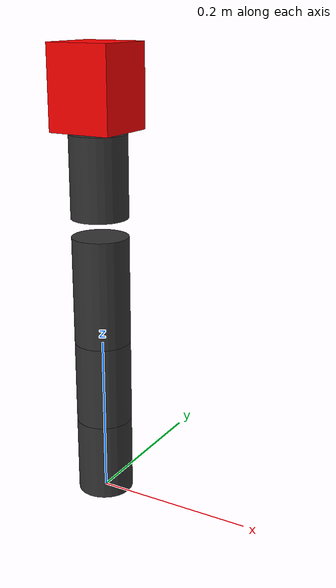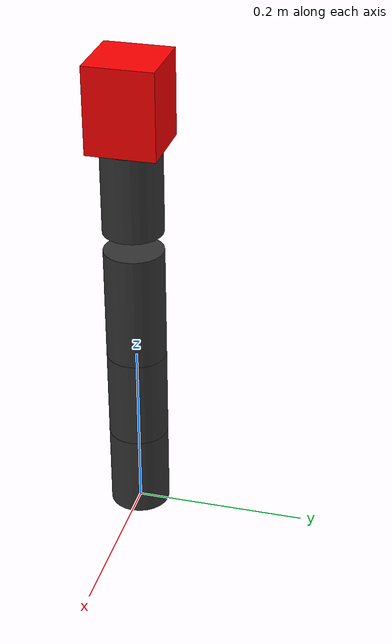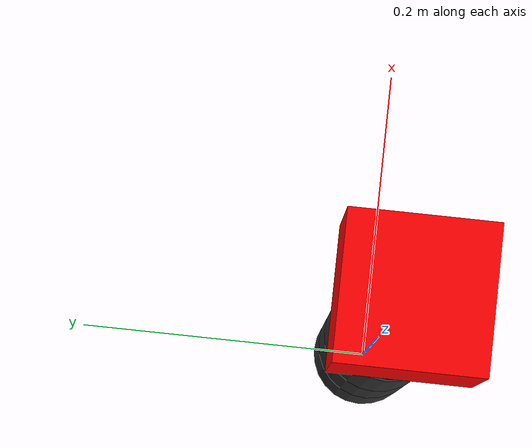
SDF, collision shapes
<?xml version="1.0"?>

<sdf version="1.7">
    <model name="MY_ROBOT">
      <pose>0 0 0 0 0 0</pose>

      <!-- BASE -->
      <link name="BASE">
        <pose>0 0 0 0 0 0</pose>
      </link>

      <!-- SHOULDER -->
      <link name="L1">
        <pose >0 0 0.098 0 0 1.5708</pose>
        <inertial>
          <pose >0 0 0 0 0 0</pose>
          <mass>0.1</mass>
          <inertia>
            <ixx>0.001</ixx>
            <ixy>0</ixy>
            <ixz>0</ixz>
            <iyy>0.001</iyy>
            <iyz>0</iyz>
            <izz>0.001</izz>
          </inertia>
        </inertial>
        <collision name="L1_collision">
          <pose>0 0 -0.049 0 0 0</pose>
          <geometry>
            <cylinder>
              <radius>0.035</radius>
              <length>0.098</length>
            </cylinder>
          </geometry>
        </collision>

        <visual name="L1_visual_a">
          <pose>0 0 -0.088 0 0 0</pose>
          <geometry>
            <cylinder>
              <radius>0.035</radius>
              <length>0.02</length>
            </cylinder>
          </geometry>
          <material>
            <ambient>0.2 0.2 0.2 1</ambient> <!-- dark gray -->
            <diffuse>0.2 0.2 0.2 1</diffuse>
          </material>
        </visual>

        <visual name="L1_visual_b">
          <pose>0 0 -0.049 0 0 0</pose>
          <geometry>
            <cylinder>
              <radius>0.015</radius>
              <length>0.098</length>
            </cylinder>
          </geometry>
          <material>
            <ambient>0.8 0.8 0.8 1</ambient> <!-- light gray -->
            <diffuse>0.8 0.8 0.8 1</diffuse>
          </material>
        </visual>
      </link>

      <!-- JOINT J0-->
      <joint name="J0" type="revolute">
        <parent>BASE</parent>
        <child>L1</child>
        <pose>0 0 0 0 0 0</pose>
        <axis>
          <xyz>0 0 1</xyz>
          <limit>
            <lower>-1.5708</lower>
            <upper>1.5708</upper>
            <effort>10</effort>
            <velocity>0.35</velocity>
          </limit>
          <dynamics>
            <damping>0</damping>
            <friction>0</friction>
          </dynamics>
        </axis>
      </joint>

      <!-- ARM -->
      <link name="L2">
        <pose>0 0 0.2030 0 -1.5708 1.5708</pose>
        <inertial>
          <pose>0.0 0 0 0 0 0</pose>
          <mass>0.1</mass>
          <inertia>
            <ixx>0.001</ixx>
            <ixy>0</ixy>
            <ixz>0</ixz>
            <iyy>0.001</iyy>
            <iyz>0</iyz>
            <izz>0.001</izz>
          </inertia>
        </inertial>
        <collision name="L2_collision">
          <pose>-0.0525 0 0 0 1.5708 0</pose>
          <geometry>
            <cylinder>
              <radius>0.035</radius>
              <length>0.105</length>
            </cylinder>
          </geometry>
        </collision>
        <visual name="L2_visual_a">
          <pose>-0.105 0 0 0 0 0</pose>
          <geometry>
            <cylinder>
              <radius>0.02</radius>
              <length>0.05</length>
            </cylinder>
          </geometry>
          <material>
            <ambient>0.2 0.2 0.2 1</ambient> <!-- dark gray -->
            <diffuse>0.2 0.2 0.2 1</diffuse>
          </material>
        </visual>

        <visual name="L2_visual_b">
          <pose>-0.0525 0 0 0 1.5708 0</pose>
          <geometry>
            <cylinder>
              <radius>0.015</radius>
              <length>0.105</length>
            </cylinder>
          </geometry>
          <material>
            <ambient>0.8 0.8 0.8 1</ambient> <!-- light gray -->
            <diffuse>0.8 0.8 0.8 1</diffuse>
          </material>
        </visual>
      </link>

      <!-- JOINT J1-->
      <joint name="J1" type="revolute">
        <parent>L1</parent>
        <child>L2</child>
        <pose>-0.105 0 0 0 0 0</pose>
        <axis>
          <xyz>0 0 1</xyz>
          <limit>
            <lower>-1.5708</lower>
            <upper>1.5708</upper>
            <effort>14</effort>
            <velocity>0.35</velocity>
          </limit>
          <dynamics>
            <damping>0</damping>
            <friction>0</friction>
          </dynamics>
        </axis>
      </joint>

      <!-- L3 LINK -->
      <link name="L3">
        <pose>0 0 0.338 0 -1.5708 1.5708</pose>
        <inertial>
          <pose>0 0 0 0 0 0</pose>
          <mass>0.1</mass>
          <inertia>
            <ixx>0.001</ixx>
            <ixy>0</ixy>
            <ixz>0</ixz>
            <iyy>0.001</iyy>
            <iyz>0</iyz>
            <izz>0.001</izz>
          </inertia>
        </inertial>
        <collision name="L3_collision">
          <pose>-0.0675 0 0 0 1.5708 0</pose>
          <geometry>
            <cylinder>
              <radius>0.035</radius>
              <length>0.135</length>
            </cylinder>
          </geometry>
        </collision>
        <visual name="L3_visual_a">
          <pose>-0.135 0 0 0 0 0</pose>
          <geometry>
            <cylinder>
              <radius>0.02</radius>
              <length>0.05</length>
            </cylinder>
          </geometry>
          <material>
            <ambient>0.2 0.2 0.2 1</ambient> <!-- dark gray -->
            <diffuse>0.2 0.2 0.2 1</diffuse>
          </material>
        </visual>

        <visual name="L3_visual_b">
          <pose>-0.0675 0 0 0 1.5708 0</pose>
          <geometry>
            <cylinder>
              <radius>0.015</radius>
              <length>0.135</length>
            </cylinder>
          </geometry>
          <material>
            <ambient>0.8 0.8 0.8 1</ambient> <!-- light gray -->
            <diffuse>0.8 0.8 0.8 1</diffuse>
          </material>
        </visual>
      </link>

      <!-- JOINT J2-->
      <joint name="J2" type="revolute">
        <parent>L2</parent>
        <child>L3</child>
        <pose>-0.135 0 0 0 0 0</pose>
        <axis>
          <xyz>0 0 1</xyz>
          <limit>
            <lower>-1.5708</lower>
            <upper>1.5708</upper>
            <effort>10</effort>
            <velocity>0.35</velocity>
          </limit>
          <dynamics>
            <damping>0</damping>
            <friction>0</friction>
          </dynamics>
        </axis>
      </joint>

            <!-- LOWER_WRIST -->
      <link name="L4">
        <pose>0 0 0.411 0 0 3.1416</pose>
        <inertial>
          <pose>0 0 0 0 0 0</pose>
          <mass>0.1</mass>
          <inertia>
            <ixx>0.001</ixx>
            <ixy>0</ixy>
            <ixz>0</ixz>
            <iyy>0.001</iyy>
            <iyz>0</iyz>
            <izz>0.001</izz>
          </inertia>
        </inertial>
        <collision name="L4_collision">
          <pose>0 0 0 0 0 0</pose>
          <geometry>
            <cylinder>
              <radius>0.035</radius>
              <length>0.1</length>
            </cylinder>
          </geometry>
        </collision>
        <visual name="L4_visual_a">
          <pose>0 0 -0.073 0 -1.5708 1.5708</pose>
          <geometry>
            <cylinder>
              <radius>0.02</radius>
              <length>0.05</length>
            </cylinder>
          </geometry>
          <material>
            <ambient>0.2 0.2 0.2 1</ambient> <!-- dark gray -->
            <diffuse>0.2 0.2 0.2 1</diffuse>
          </material>
        </visual>

        <visual name="L4_visual_b">
          <pose>0 0 -0.0365 0 0 0</pose>
          <geometry>
            <cylinder>
              <radius>0.015</radius>
              <length>0.073</length>
            </cylinder>
          </geometry>
          <material>
            <ambient>0.8 0.8 0.8 1</ambient> <!-- light gray -->
            <diffuse>0.8 0.8 0.8 1</diffuse>
          </material>
        </visual>
      </link>

      <joint name="J3" type="revolute">
        <parent>L3</parent>
        <child>L4</child>
        <pose>0 0 -0.073 0 0 0</pose>
        <axis>
          <xyz>0 1 0</xyz>
          <limit>
            <lower>-1.5708</lower>
            <upper>1.5708</upper>
            <effort>7</effort>
            <velocity>0.35</velocity>
          </limit>
          <dynamics>
            <damping>0</damping>
            <friction>0</friction>
          </dynamics>
        </axis>
      </joint>

      <!-- END_EFFECTOR Tool Center Point-->
      <link name="tool_center_point">
        <pose>0 0 0.514 0 0 3.1416</pose>

        <inertial>
          <pose>0 0 0 0 0 0</pose>
          <mass>0.1</mass>
          <inertia>
            <ixx>0.001</ixx>
            <ixy>0</ixy>
            <ixz>0</ixz>
            <iyy>0.001</iyy>
            <iyz>0</iyz>
            <izz>0.001</izz>
          </inertia>
        </inertial>

        <collision name="End_Effector_collision">
          <pose>0 0 0 0 0 0</pose>
          <geometry>
            <box>
              <size>0.08 0.08 0.1</size>
            </box>
          </geometry>
        </collision>

        <visual name="x_axis">
          <pose>0.025 0 0 0 1.5708 0</pose>
          <geometry>
            <cylinder>
              <radius>0.002</radius>
              <length>0.05</length>
            </cylinder>
          </geometry>
          <material>
            <ambient>1 0 0 1</ambient>
            <diffuse>1 0 0 1</diffuse>
          </material>
        </visual>
        <visual name="y_axis">
          <pose>0 0.025 0 1.5708 0 0</pose>
          <geometry>
            <cylinder>
              <radius>0.002</radius>
              <length>0.05</length>
            </cylinder>
          </geometry>
          <material>
            <ambient>0 1 0 1</ambient>
            <diffuse>0 1 0 1</diffuse>
          </material>
        </visual>
        <visual name="z_axis">
          <pose>0 0 0.025 0 0 0</pose>
          <geometry>
            <cylinder>
              <radius>0.002</radius>
              <length>0.05</length>
            </cylinder>
          </geometry>
          <material>
            <ambient>0 0 1 1</ambient>
            <diffuse>0 0 1 1</diffuse>
          </material>
        </visual>

        <visual name="L5_visual_a">
          <pose>0 0 -0.103 0 0 0</pose>
          <geometry>
            <cylinder>
              <radius>0.02</radius>
              <length>0.025</length>
            </cylinder>
          </geometry>
          <material>
            <ambient>0.2 0.2 0.2 1</ambient> <!-- dark gray -->
            <diffuse>0.2 0.2 0.2 1</diffuse>
          </material>
        </visual>

        <visual name="L5_visual_b">
          <pose>0 0 -0.068 0 0 0</pose>
          <geometry>
            <cylinder>
              <radius>0.015</radius>
              <length>0.05</length>
            </cylinder>
          </geometry>
          <material>
            <ambient>0.8 0.8 0.8 1</ambient> <!-- light gray -->
            <diffuse>0.8 0.8 0.8 1</diffuse>
          </material>
        </visual>

        <visual name="gripper">
          <pose>0 0 -0.025 1.5708 0 0</pose>
          <geometry>
            <mesh>
              <uri>gripper.obj</uri>
            </mesh>
          </geometry>
        </visual>

      </link>

    <joint name="J4" type="revolute">
        <parent>L4</parent>
        <child>tool_center_point</child>
        <pose>0 0 -0.103 0 0 0</pose>
        <axis>
          <xyz>0 0 1</xyz>
          <limit>
            <lower>-1.5708</lower>
            <upper>1.5708</upper>
            <effort>7</effort>
            <velocity>0.35</velocity>
          </limit>
          <dynamics>
            <damping>0</damping>
            <friction>0</friction>
          </dynamics>
        </axis>
    </joint>

    <static>0</static>
    </model>
</sdf>
